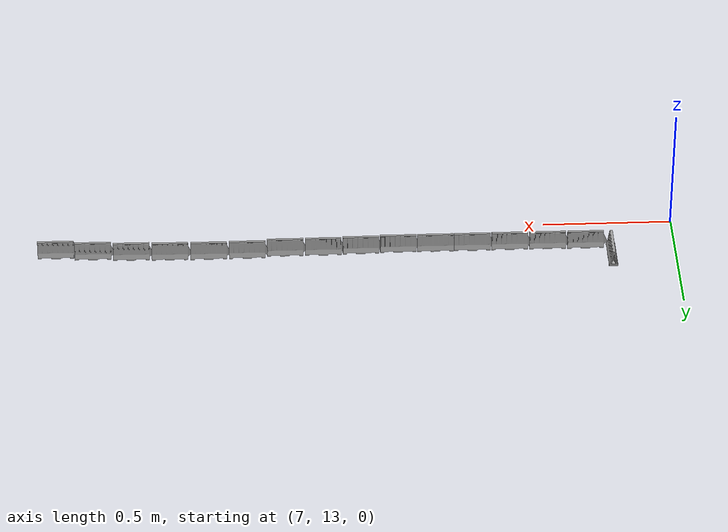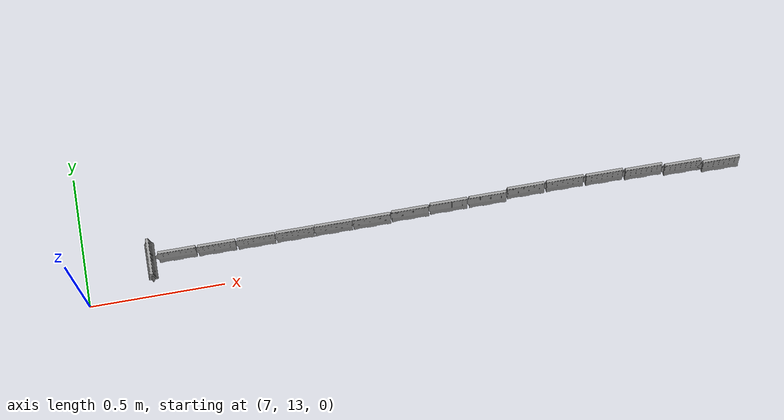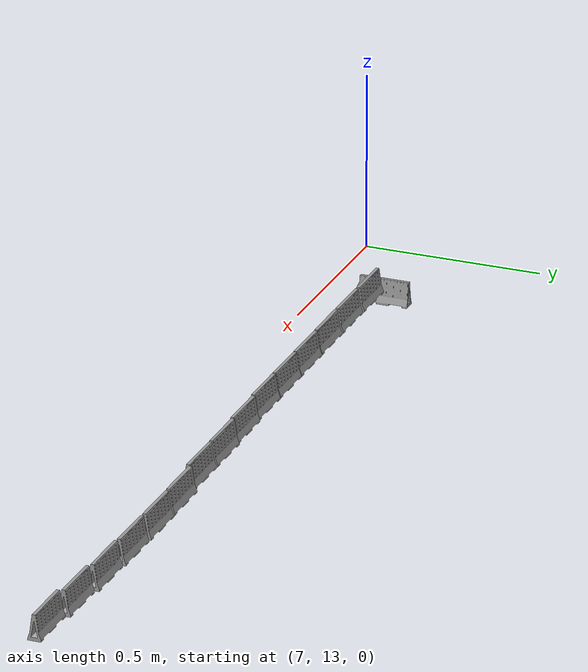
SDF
<sdf version="1.7">
 <world name="bfmc_official">
  <model name="separator">
   <link name="link_0">
    <visual name="visual">
     <geometry><mesh><uri>model://separator/meshes/separator.dae</uri><scale>1 1 1</scale></mesh></geometry>
     <material>
      <lighting>1</lighting>
      <script><uri>file://media/materials/scripts/gazebo.material</uri><name>Gazebo/Gray</name></script>
      <shader type="vertex"><normal_map>__default__</normal_map></shader>
      <ambient>0.3 0.3 0.3 1</ambient>
      <diffuse>0.7 0.7 0.7 1</diffuse>
      <specular>0.01 0.01 0.01 1</specular>
      <emissive>0 0 0 1</emissive>
     </material>
    </visual>
   </link>
   <static>1</static>
   <pose>7.24054 13.147 0 0 -0 0</pose>
  </model>
  <model name="separator_clone">
   <link name="link_0">
    <visual name="visual">
     <geometry><mesh><uri>model://separator/meshes/separator.dae</uri><scale>1 1 1</scale></mesh></geometry>
     <material>
      <lighting>1</lighting>
      <script><uri>file://media/materials/scripts/gazebo.material</uri><name>Gazebo/Gray</name></script>
      <shader type="vertex"><normal_map>__default__</normal_map></shader>
      <ambient>0.3 0.3 0.3 1</ambient>
      <diffuse>0.7 0.7 0.7 1</diffuse>
      <specular>0.01 0.01 0.01 1</specular>
      <emissive>0 0 0 1</emissive>
     </material>
    </visual>
   </link>
   <static>1</static>
   <pose>7.34725 13.1395 0.044594 0 0 -1.57267</pose>
  </model>
  <model name="separator_clone_0">
   <link name="link_0">
    <visual name="visual">
     <geometry><mesh><uri>model://separator/meshes/separator.dae</uri><scale>1 1 1</scale></mesh></geometry>
     <material>
      <lighting>1</lighting>
      <script><uri>file://media/materials/scripts/gazebo.material</uri><name>Gazebo/Gray</name></script>
      <shader type="vertex"><normal_map>__default__</normal_map></shader>
      <ambient>0.3 0.3 0.3 1</ambient>
      <diffuse>0.7 0.7 0.7 1</diffuse>
      <specular>0.01 0.01 0.01 1</specular>
      <emissive>0 0 0 1</emissive>
     </material>
    </visual>
   </link>
   <static>1</static>
   <pose>7.49497 13.1386 0.044594 0 0 -1.57267</pose>
  </model>
  <model name="separator_clone_1">
   <link name="link_0">
    <visual name="visual">
     <geometry><mesh><uri>model://separator/meshes/separator.dae</uri><scale>1 1 1</scale></mesh></geometry>
     <material>
      <lighting>1</lighting>
      <script><uri>file://media/materials/scripts/gazebo.material</uri><name>Gazebo/Gray</name></script>
      <shader type="vertex"><normal_map>__default__</normal_map></shader>
      <ambient>0.3 0.3 0.3 1</ambient>
      <diffuse>0.7 0.7 0.7 1</diffuse>
      <specular>0.01 0.01 0.01 1</specular>
      <emissive>0 0 0 1</emissive>
     </material>
    </visual>
   </link>
   <static>1</static>
   <pose>7.64226 13.1382 0.044594 0 0 -1.57267</pose>
  </model>
  <model name="separator_clone_2">
   <link name="link_0">
    <visual name="visual">
     <geometry><mesh><uri>model://separator/meshes/separator.dae</uri><scale>1 1 1</scale></mesh></geometry>
     <material>
      <lighting>1</lighting>
      <script><uri>file://media/materials/scripts/gazebo.material</uri><name>Gazebo/Gray</name></script>
      <shader type="vertex"><normal_map>__default__</normal_map></shader>
      <ambient>0.3 0.3 0.3 1</ambient>
      <diffuse>0.7 0.7 0.7 1</diffuse>
      <specular>0.01 0.01 0.01 1</specular>
      <emissive>0 0 0 1</emissive>
     </material>
    </visual>
   </link>
   <static>1</static>
   <pose>7.78778 13.139 0.044594 0 0 -1.57267</pose>
  </model>
  <model name="separator_clone_3">
   <link name="link_0">
    <visual name="visual">
     <geometry><mesh><uri>model://separator/meshes/separator.dae</uri><scale>1 1 1</scale></mesh></geometry>
     <material>
      <lighting>1</lighting>
      <script><uri>file://media/materials/scripts/gazebo.material</uri><name>Gazebo/Gray</name></script>
      <shader type="vertex"><normal_map>__default__</normal_map></shader>
      <ambient>0.3 0.3 0.3 1</ambient>
      <diffuse>0.7 0.7 0.7 1</diffuse>
      <specular>0.01 0.01 0.01 1</specular>
      <emissive>0 0 0 1</emissive>
     </material>
    </visual>
   </link>
   <static>1</static>
   <pose>7.93142 13.1394 0.044594 0 0 -1.57267</pose>
  </model>
  <model name="separator_clone_4">
   <link name="link_0">
    <visual name="visual">
     <geometry><mesh><uri>model://separator/meshes/separator.dae</uri><scale>1 1 1</scale></mesh></geometry>
     <material>
      <lighting>1</lighting>
      <script><uri>file://media/materials/scripts/gazebo.material</uri><name>Gazebo/Gray</name></script>
      <shader type="vertex"><normal_map>__default__</normal_map></shader>
      <ambient>0.3 0.3 0.3 1</ambient>
      <diffuse>0.7 0.7 0.7 1</diffuse>
      <specular>0.01 0.01 0.01 1</specular>
      <emissive>0 0 0 1</emissive>
     </material>
    </visual>
   </link>
   <static>1</static>
   <pose>8.07555 13.1395 0.044594 0 0 -1.57267</pose>
  </model>
  <model name="separator_clone_5">
   <link name="link_0">
    <visual name="visual">
     <geometry><mesh><uri>model://separator/meshes/separator.dae</uri><scale>1 1 1</scale></mesh></geometry>
     <material>
      <lighting>1</lighting>
      <script><uri>file://media/materials/scripts/gazebo.material</uri><name>Gazebo/Gray</name></script>
      <shader type="vertex"><normal_map>__default__</normal_map></shader>
      <ambient>0.3 0.3 0.3 1</ambient>
      <diffuse>0.7 0.7 0.7 1</diffuse>
      <specular>0.01 0.01 0.01 1</specular>
      <emissive>0 0 0 1</emissive>
     </material>
    </visual>
   </link>
   <static>1</static>
   <pose>8.22073 13.1435 0.044594 0 0 -1.57267</pose>
  </model>
  <model name="separator_clone_6">
   <link name="link_0">
    <visual name="visual">
     <geometry><mesh><uri>model://separator/meshes/separator.dae</uri><scale>1 1 1</scale></mesh></geometry>
     <material>
      <lighting>1</lighting>
      <script><uri>file://media/materials/scripts/gazebo.material</uri><name>Gazebo/Gray</name></script>
      <shader type="vertex"><normal_map>__default__</normal_map></shader>
      <ambient>0.3 0.3 0.3 1</ambient>
      <diffuse>0.7 0.7 0.7 1</diffuse>
      <specular>0.01 0.01 0.01 1</specular>
      <emissive>0 0 0 1</emissive>
     </material>
    </visual>
   </link>
   <static>1</static>
   <pose>8.36684 13.1473 0.044594 0 0 -1.57267</pose>
  </model>
  <model name="separator_clone_7">
   <link name="link_0">
    <visual name="visual">
     <geometry><mesh><uri>model://separator/meshes/separator.dae</uri><scale>1 1 1</scale></mesh></geometry>
     <material>
      <lighting>1</lighting>
      <script><uri>file://media/materials/scripts/gazebo.material</uri><name>Gazebo/Gray</name></script>
      <shader type="vertex"><normal_map>__default__</normal_map></shader>
      <ambient>0.3 0.3 0.3 1</ambient>
      <diffuse>0.7 0.7 0.7 1</diffuse>
      <specular>0.01 0.01 0.01 1</specular>
      <emissive>0 0 0 1</emissive>
     </material>
    </visual>
   </link>
   <static>1</static>
   <pose>8.51483 13.1478 0.044594 0 0 -1.57267</pose>
  </model>
  <model name="separator_clone_8">
   <link name="link_0">
    <visual name="visual">
     <geometry><mesh><uri>model://separator/meshes/separator.dae</uri><scale>1 1 1</scale></mesh></geometry>
     <material>
      <lighting>1</lighting>
      <script><uri>file://media/materials/scripts/gazebo.material</uri><name>Gazebo/Gray</name></script>
      <shader type="vertex"><normal_map>__default__</normal_map></shader>
      <ambient>0.3 0.3 0.3 1</ambient>
      <diffuse>0.7 0.7 0.7 1</diffuse>
      <specular>0.01 0.01 0.01 1</specular>
      <emissive>0 0 0 1</emissive>
     </material>
    </visual>
   </link>
   <static>1</static>
   <pose>8.66151 13.1569 0.044594 0 0 -1.57267</pose>
  </model>
  <model name="separator_clone_9">
   <link name="link_0">
    <visual name="visual">
     <geometry><mesh><uri>model://separator/meshes/separator.dae</uri><scale>1 1 1</scale></mesh></geometry>
     <material>
      <lighting>1</lighting>
      <script><uri>file://media/materials/scripts/gazebo.material</uri><name>Gazebo/Gray</name></script>
      <shader type="vertex"><normal_map>__default__</normal_map></shader>
      <ambient>0.3 0.3 0.3 1</ambient>
      <diffuse>0.7 0.7 0.7 1</diffuse>
      <specular>0.01 0.01 0.01 1</specular>
      <emissive>0 0 0 1</emissive>
     </material>
    </visual>
   </link>
   <static>1</static>
   <pose>8.81049 13.1581 0.044594 0 0 -1.57267</pose>
  </model>
  <model name="separator_clone_10">
   <link name="link_0">
    <visual name="visual">
     <geometry><mesh><uri>model://separator/meshes/separator.dae</uri><scale>1 1 1</scale></mesh></geometry>
     <material>
      <lighting>1</lighting>
      <script><uri>file://media/materials/scripts/gazebo.material</uri><name>Gazebo/Gray</name></script>
      <shader type="vertex"><normal_map>__default__</normal_map></shader>
      <ambient>0.3 0.3 0.3 1</ambient>
      <diffuse>0.7 0.7 0.7 1</diffuse>
      <specular>0.01 0.01 0.01 1</specular>
      <emissive>0 0 0 1</emissive>
     </material>
    </visual>
   </link>
   <static>1</static>
   <pose>8.96081 13.1567 0.044594 0 0 -1.57267</pose>
  </model>
  <model name="separator_clone_11">
   <link name="link_0">
    <visual name="visual">
     <geometry><mesh><uri>model://separator/meshes/separator.dae</uri><scale>1 1 1</scale></mesh></geometry>
     <material>
      <lighting>1</lighting>
      <script><uri>file://media/materials/scripts/gazebo.material</uri><name>Gazebo/Gray</name></script>
      <shader type="vertex"><normal_map>__default__</normal_map></shader>
      <ambient>0.3 0.3 0.3 1</ambient>
      <diffuse>0.7 0.7 0.7 1</diffuse>
      <specular>0.01 0.01 0.01 1</specular>
      <emissive>0 0 0 1</emissive>
     </material>
    </visual>
   </link>
   <static>1</static>
   <pose>9.10971 13.1526 0.044594 0 0 -1.57267</pose>
  </model>
  <model name="separator_clone_12">
   <link name="link_0">
    <visual name="visual">
     <geometry><mesh><uri>model://separator/meshes/separator.dae</uri><scale>1 1 1</scale></mesh></geometry>
     <material>
      <lighting>1</lighting>
      <script><uri>file://media/materials/scripts/gazebo.material</uri><name>Gazebo/Gray</name></script>
      <shader type="vertex"><normal_map>__default__</normal_map></shader>
      <ambient>0.3 0.3 0.3 1</ambient>
      <diffuse>0.7 0.7 0.7 1</diffuse>
      <specular>0.01 0.01 0.01 1</specular>
      <emissive>0 0 0 1</emissive>
     </material>
    </visual>
   </link>
   <static>1</static>
   <pose>9.25863 13.1442 0.044594 0 0 -1.57267</pose>
  </model>
  <model name="separator_clone_13">
   <link name="link_0">
    <visual name="visual">
     <geometry><mesh><uri>model://separator/meshes/separator.dae</uri><scale>1 1 1</scale></mesh></geometry>
     <material>
      <lighting>1</lighting>
      <script><uri>file://media/materials/scripts/gazebo.material</uri><name>Gazebo/Gray</name></script>
      <shader type="vertex"><normal_map>__default__</normal_map></shader>
      <ambient>0.3 0.3 0.3 1</ambient>
      <diffuse>0.7 0.7 0.7 1</diffuse>
      <specular>0.01 0.01 0.01 1</specular>
      <emissive>0 0 0 1</emissive>
     </material>
    </visual>
   </link>
   <static>1</static>
   <pose>9.40216 13.1322 0.044594 0 0 -1.57267</pose>
  </model>
 </world>
</sdf>
